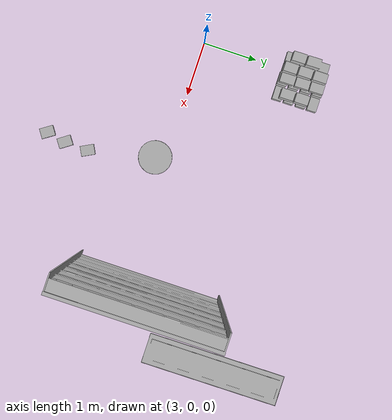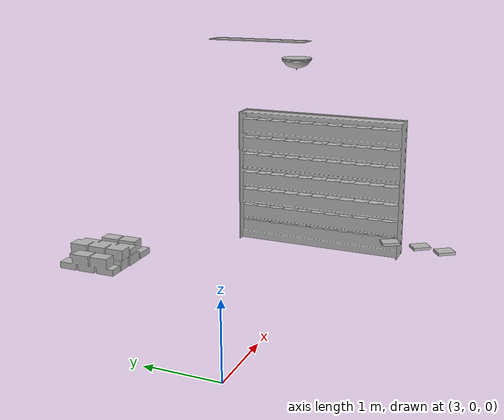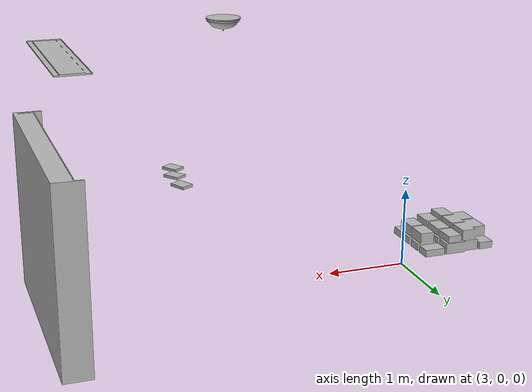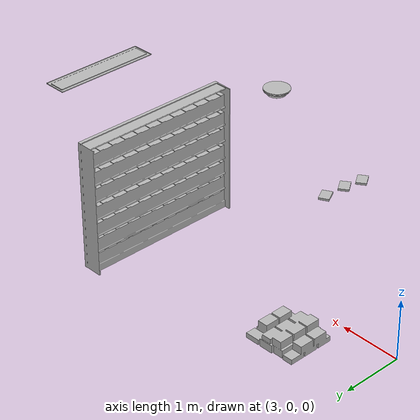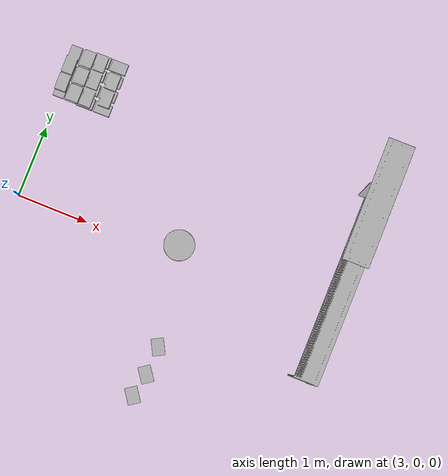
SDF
<sdf version="1.7">
 <world name="default">
  <model name="AirConditionerC_01_001">
   <pose>7.4582 1.42245 3.29094 0 0 -1.56422</pose>
   <frame name="aws_robomaker_retail_AirConditionerC_01::__model__" attached_to="aws_robomaker_retail_AirConditionerC_01::link">
    <pose relative_to="__model__">0 0 0 0 -0 0</pose>
   </frame>
   <link name="aws_robomaker_retail_AirConditionerC_01::link">
    <inertial><mass>50</mass></inertial>
    <collision name="collision">
     <geometry>
      <mesh>
       <uri>model://aws_robomaker_retail_AirConditionerC_01/meshes/aws_AirConditionerC_01_collision.DAE</uri>
       <scale>1 1 1</scale>
      </mesh>
     </geometry>
    </collision>
    <visual name="visual">
     <geometry>
      <mesh>
       <uri>model://aws_robomaker_retail_AirConditionerC_01/meshes/aws_AirConditionerC_01_visual.DAE</uri>
      </mesh>
     </geometry>
    </visual>
    <pose relative_to="aws_robomaker_retail_AirConditionerC_01::__model__">0 0 0 0 -0 0</pose>
   </link>
   <static>1</static>
  </model>
  <model name="BookE_01_001">
   <pose>5.47653 -1.93253 0.948933 4e-06 1e-06 -2.54352</pose>
   <frame name="aws_robomaker_retail_BookE_01::__model__" attached_to="aws_robomaker_retail_BookE_01::link">
    <pose relative_to="__model__">0 0 0 0 -0 0</pose>
   </frame>
   <link name="aws_robomaker_retail_BookE_01::link">
    <inertial>
     <mass>1</mass>
     <inertia><ixy>0</ixy><ixz>0</ixz><iyz>0</iyz><ixx>0.0666</ixx><iyy>0.0346</iyy><izz>0.0986</izz></inertia>
    </inertial>
    <collision name="collision">
     <geometry>
      <mesh>
       <uri>model://aws_robomaker_retail_BookE_01/meshes/aws_BookE_01_collision.DAE</uri>
       <scale>1 1 1</scale>
      </mesh>
     </geometry>
    </collision>
    <visual name="visual">
     <geometry>
      <mesh><uri>model://aws_robomaker_retail_BookE_01/meshes/aws_BookE_01_visual.DAE</uri></mesh>
     </geometry>
    </visual>
    <pose relative_to="aws_robomaker_retail_BookE_01::__model__">0 0 0 0 -0 0</pose>
   </link>
   <static>1</static>
  </model>
  <model name="BookE_01_003">
   <pose>5.55255 -1.21421 0.948933 4e-06 -1e-06 -2.65431</pose>
   <frame name="aws_robomaker_retail_BookE_01::__model__" attached_to="aws_robomaker_retail_BookE_01::link">
    <pose relative_to="__model__">0 0 0 0 -0 0</pose>
   </frame>
   <link name="aws_robomaker_retail_BookE_01::link">
    <inertial>
     <mass>1</mass>
     <inertia><ixy>0</ixy><ixz>0</ixz><iyz>0</iyz><ixx>0.0666</ixx><iyy>0.0346</iyy><izz>0.0986</izz></inertia>
    </inertial>
    <collision name="collision">
     <geometry>
      <mesh>
       <uri>model://aws_robomaker_retail_BookE_01/meshes/aws_BookE_01_collision.DAE</uri>
       <scale>1 1 1</scale>
      </mesh>
     </geometry>
    </collision>
    <visual name="visual">
     <geometry>
      <mesh><uri>model://aws_robomaker_retail_BookE_01/meshes/aws_BookE_01_visual.DAE</uri></mesh>
     </geometry>
    </visual>
    <pose relative_to="aws_robomaker_retail_BookE_01::__model__">0 0 0 0 -0 0</pose>
   </link>
   <static>1</static>
  </model>
  <model name="BookE_01_005">
   <pose>5.53815 -1.61032 0.948933 0 0 -2.5269</pose>
   <frame name="aws_robomaker_retail_BookE_01::__model__" attached_to="aws_robomaker_retail_BookE_01::link">
    <pose relative_to="__model__">0 0 0 0 -0 0</pose>
   </frame>
   <link name="aws_robomaker_retail_BookE_01::link">
    <inertial>
     <mass>1</mass>
     <inertia><ixy>0</ixy><ixz>0</ixz><iyz>0</iyz><ixx>0.0666</ixx><iyy>0.0346</iyy><izz>0.0986</izz></inertia>
    </inertial>
    <collision name="collision">
     <geometry>
      <mesh>
       <uri>model://aws_robomaker_retail_BookE_01/meshes/aws_BookE_01_collision.DAE</uri>
       <scale>1 1 1</scale>
      </mesh>
     </geometry>
    </collision>
    <visual name="visual">
     <geometry>
      <mesh><uri>model://aws_robomaker_retail_BookE_01/meshes/aws_BookE_01_visual.DAE</uri></mesh>
     </geometry>
    </visual>
    <pose relative_to="aws_robomaker_retail_BookE_01::__model__">0 0 0 0 -0 0</pose>
   </link>
   <static>1</static>
  </model>
  <model name="BookF_01_005">
   <pose>3.42227 1.72641 1.03816 8e-06 -0 1.58038</pose>
   <frame name="aws_robomaker_retail_BookF_01::__model__" attached_to="aws_robomaker_retail_BookF_01::link">
    <pose relative_to="__model__">0 0 0 0 -0 0</pose>
   </frame>
   <link name="aws_robomaker_retail_BookF_01::link">
    <inertial>
     <mass>10</mass>
     <inertia>
      <ixx>0.583817</ixx>
      <ixy>0</ixy>
      <ixz>0</ixz>
      <iyy>0.502925</iyy>
      <iyz>0</iyz>
      <izz>0.99304</izz>
     </inertia>
    </inertial>
    <collision name="collision">
     <geometry>
      <mesh>
       <uri>model://aws_robomaker_retail_BookF_01/meshes/aws_BookF_01_collision.DAE</uri>
       <scale>1 1 1</scale>
      </mesh>
     </geometry>
    </collision>
    <visual name="visual">
     <geometry>
      <mesh><uri>model://aws_robomaker_retail_BookF_01/meshes/aws_BookF_01_visual.DAE</uri></mesh>
     </geometry>
    </visual>
    <pose relative_to="aws_robomaker_retail_BookF_01::__model__">0 0 0 0 -0 0</pose>
   </link>
   <static>1</static>
  </model>
  <model name="BookshelfB_01_008">
   <pose>7.47833 0.402539 0.017181 3e-06 -0.000156 1.5708</pose>
   <frame name="aws_robomaker_retail_BookshelfB_01::__model__" attached_to="aws_robomaker_retail_BookshelfB_01::link">
    <pose relative_to="__model__">0 0 0 0 -0 0</pose>
   </frame>
   <link name="aws_robomaker_retail_BookshelfB_01::link">
    <inertial>
     <mass>50</mass>
     <inertia><ixx>19.8742</ixx><ixy>0</ixy><ixz>0</ixz><iyy>49.1263</iyy><iyz>0</iyz><izz>30.2231</izz></inertia>
    </inertial>
    <collision name="collision">
     <geometry>
      <mesh>
       <uri>model://aws_robomaker_retail_BookshelfB_01/meshes/aws_BookshelfB_01_collision.DAE</uri>
       <scale>1 1 1</scale>
      </mesh>
     </geometry>
    </collision>
    <visual name="visual">
     <geometry>
      <mesh><uri>model://aws_robomaker_retail_BookshelfB_01/meshes/aws_BookshelfB_01_visual.DAE</uri></mesh>
     </geometry>
    </visual>
    <pose relative_to="aws_robomaker_retail_BookshelfB_01::__model__">0 0 0 0 -0 0</pose>
   </link>
   <static>1</static>
  </model>
  <model name="LightA_01_003">
   <pose>5.38399 0.04192 3.15033 0 -0 0</pose>
   <frame name="aws_robomaker_retail_LightA_01::__model__" attached_to="aws_robomaker_retail_LightA_01::link">
    <pose relative_to="__model__">0 0 0 0 -0 0</pose>
   </frame>
   <link name="aws_robomaker_retail_LightA_01::link">
    <inertial><mass>1</mass></inertial>
    <collision name="collision">
     <geometry>
      <mesh>
       <uri>model://aws_robomaker_retail_LightA_01/meshes/aws_LightA_01_collision.DAE</uri>
       <scale>1 1 1</scale>
      </mesh>
     </geometry>
    </collision>
    <visual name="visual">
     <geometry>
      <mesh><uri>model://aws_robomaker_retail_LightA_01/meshes/aws_LightA_01_visual.DAE</uri></mesh>
     </geometry>
    </visual>
    <pose relative_to="aws_robomaker_retail_LightA_01::__model__">0 0 0 0 -0 0</pose>
   </link>
   <static>1</static>
  </model>
 </world>
</sdf>
